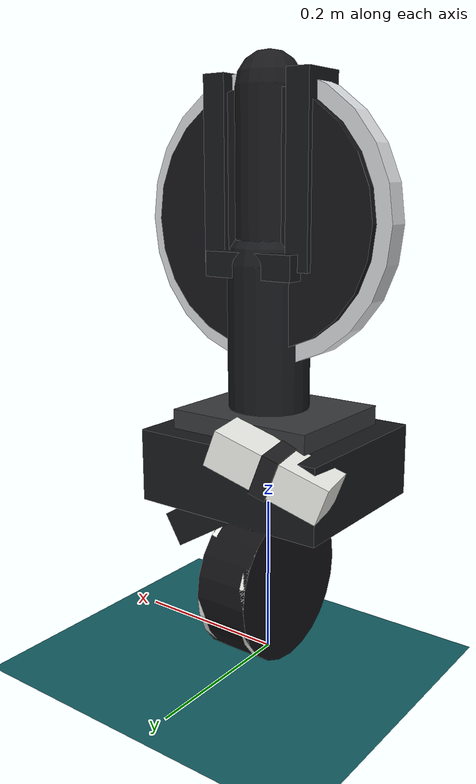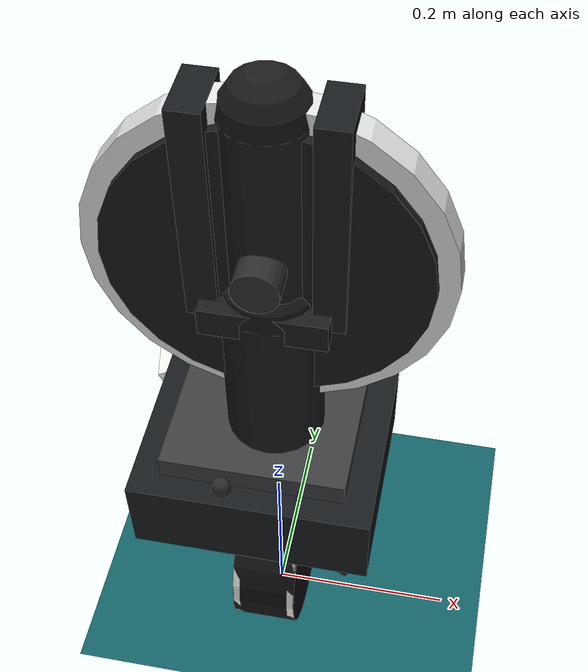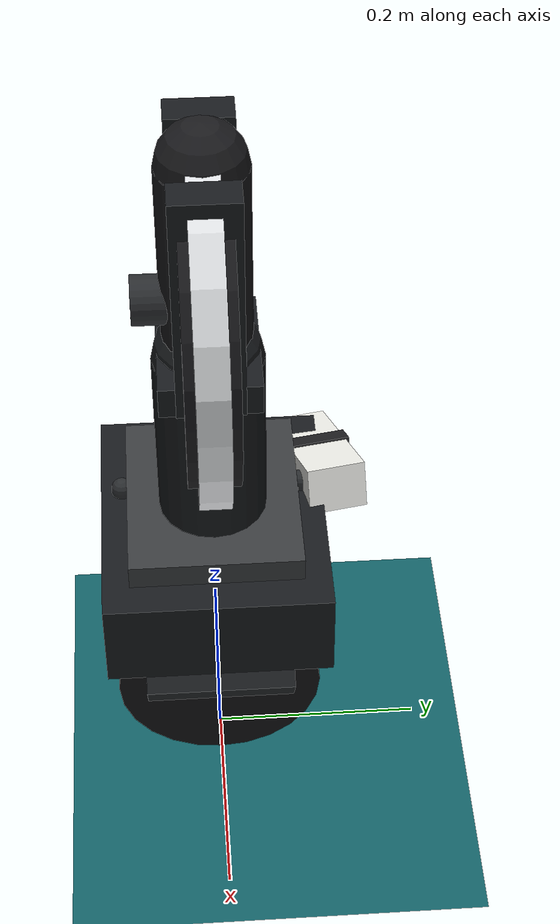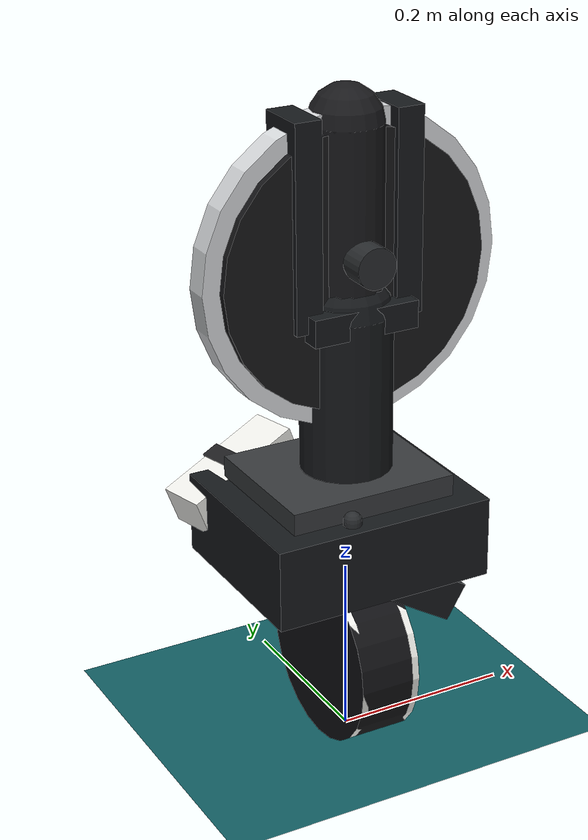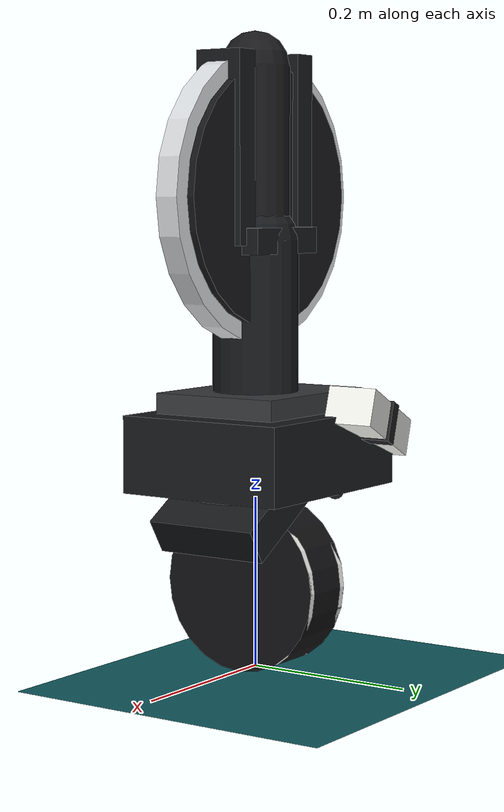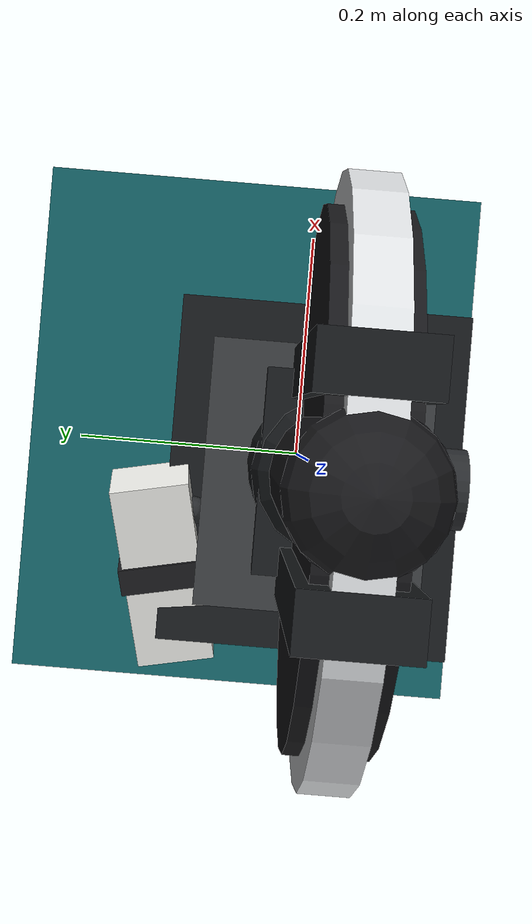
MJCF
<mujoco model="wheel_on_stick">
    <!-- Big picture: world-rooted base (via weld) + ball-drive gimbal + reaction wheel, on uneven terrain. -->
    <compiler angle="radian"/>
    <!-- Global physics settings: 1 kHz simulation and Earth gravity. -->
    <option timestep="0.001" gravity="0 0 -9.81"/>

    <asset>
        <!-- Skybox for environment lighting/background only. -->
        <texture name="sky" type="skybox" builtin="gradient" rgb1="0.78 0.80 0.82" rgb2="0.95 0.96 0.95" width="512" height="3072"/>
        <!-- Checker texture shared by terrain tiles. -->
        <texture name="ground_tex" type="2d" builtin="checker" rgb1="0.08 0.40 0.42" rgb2="0.06 0.34 0.36" width="512" height="512"/>
        <!-- Terrain material (visual + reflectance). -->
        <material name="ground_mat" texture="ground_tex" texrepeat="20 20" reflectance="0.12" specular="0.08" shininess="0.15"/>
        <!-- Blue base-wheel material. -->
        <material name="base_mat" rgba="0.07 0.07 0.08 1.0" specular="0.08" shininess="0.12"/>
        <!-- Main physical stick material. -->
        <material name="stick_mat" rgba="0.10 0.10 0.11 1.0" specular="0.18" shininess="0.25"/>
        <!-- Reaction wheel material. -->
        <material name="wheel_mat" rgba="0.86 0.87 0.88 1.0" specular="0.85" shininess="0.95"/>
        <!-- Hub/highlight material. -->
        <material name="hub_mat" rgba="0.09 0.09 0.10 1.0" specular="0.30" shininess="0.42"/>
        <!-- Dark chassis trim material. -->
        <material name="chassis_dark_mat" rgba="0.09 0.10 0.11 1.0" specular="0.35" shininess="0.55"/>
        <!-- Light chassis trim material. -->
        <material name="chassis_light_mat" rgba="0.22 0.23 0.24 1.0" specular="0.40" shininess="0.60"/>
        <!-- Accent/bumper trim material. -->
        <material name="trim_mat" rgba="0.16 0.17 0.18 1.0" specular="0.22" shininess="0.30"/>
        <!-- Payload block material. -->
        <material name="payload_mat" rgba="0.96 0.78 0.30 1.0" specular="0.40" shininess="0.45"/>
        <!-- Visual tire/rubber material. -->
        <material name="rubber_mat" rgba="0.08 0.08 0.09 1.0" specular="0.05" shininess="0.10"/>
        <!-- Glass-like visual material for decorative sensors/eyes. -->
        <material name="sensor_glass_mat" rgba="0.18 0.19 0.20 0.85" specular="0.25" shininess="0.35"/>
        <!-- Battery pack shell (white). -->
        <material name="battery_white_mat" rgba="0.95 0.95 0.93 1.0" specular="0.20" shininess="0.18"/>
        <!-- Carbon-fiber-like strap/detail. -->
        <material name="carbon_mat" rgba="0.12 0.12 0.13 1.0" specular="0.35" shininess="0.70"/>
        <!-- Wire jacket material. -->
        <material name="wire_red_mat" rgba="0.78 0.12 0.10 1.0" specular="0.20" shininess="0.28"/>
        <!-- XT-style connector yellow. -->
        <material name="connector_yellow_mat" rgba="0.86 0.66 0.14 1.0" specular="0.22" shininess="0.22"/>
    </asset>

    <visual>
        <!-- Camera clipping range. -->
        <map znear="0.001" zfar="50"/>
        <!-- Scene headlight. -->
        <headlight ambient="0.24 0.24 0.26" diffuse="0.62 0.62 0.62" specular="0.25 0.25 0.25"/>
        <!-- Atmospheric haze tint. -->
        <rgba haze="0.90 0.94 1.0 1"/>
    </visual>

    <worldbody>
        <!-- Key directional light for shape definition/shadows. -->
        <light name="sun_key"
               pos="4 -5 7"
               dir="-0.5 0.6 -1"
               directional="true"
               castshadow="true"
               diffuse="0.95 0.95 0.92"
               specular="0.20 0.20 0.20"/>
        <!-- Fill light to soften contrast. -->
        <light name="fill"
               pos="-4 3 3"
               directional="false"
               castshadow="false"
               diffuse="0.35 0.37 0.42"
               specular="0 0 0"/>

        <!-- Flat ground plane -->
        <geom name="ground"
              type="plane"
              size="100.0 100.0 0.1"
              pos="0 0 0"
              material="ground_mat"
              friction="6.0 0.01 0.0001"
              solref="0.003 1"
              solimp="0.995 0.999 0.0001 0.5 2"/>

        <!-- Safety catcher below terrain -->
        <!-- Invisible fail-safe floor to catch numerical blowups/falls. -->
        <geom name="deep_floor" type="plane" size="100 100 0.001" pos="0 0 -1.2" rgba="0 0 0 0" friction="6.0 0.01 0.0001"/>

        <!-- Camera -->
        <!-- Default side camera for observing balancing behavior. -->
        <camera name="side"
                pos="0 -3.8 1.55"
                quat="0.9336 0.3584 0 0"/>

        <!-- Base free body (fully unconstrained in world, no artificial translational rails). -->
        <body name="base_x" pos="0 0 0.10">
                <freejoint name="base_free"/>
                <!-- Small inertial regularizer for numerical robustness. -->
                <inertial pos="0 0 0" mass="0.02" diaginertia="0.00001 0.00001 0.00001"/>

            <!-- Base cart Y -->
            <body name="base_y" pos="0 0 0.0">

                <!-- Cart body -->
                <!-- Main physical base-wheel/body geom for contact and inertia. -->
                <geom name="drive_wheel_phys"
                      type="cylinder"
                      size="0.10 0.035"
                      mass="0.5"
                      quat="0.7071 0 0.7071 0"
                      material="base_mat"
                      friction="6.0 0.01 0.0001"
                      solref="0.003 1"
                      solimp="0.995 0.999 0.0001 0.5 2"/>
                <!-- Visual chassis shell (no mass/collision contribution). -->
                <geom name="chassis_shell"
                      type="box"
                      size="0.125 0.105 0.045"
                      pos="-0.01 0 0.155"
                      mass="0"
                      contype="0"
                      conaffinity="0"
                      material="chassis_dark_mat"/>
                <!-- Visual top panel (no mass/collision contribution). -->
                <geom name="chassis_top_plate"
                      type="box"
                      size="0.095 0.080 0.012"
                      pos="-0.01 0 0.213"
                      mass="0"
                      contype="0"
                      conaffinity="0"
                      material="chassis_light_mat"/>
                <!-- Lower fork cover block. -->
                <geom name="fork_cover"
                      type="box"
                      size="0.070 0.070 0.022"
                      pos="0.040 0.000 0.098"
                      euler="0.0 0.55 0.0"
                      mass="0"
                      contype="0"
                      conaffinity="0"
                      material="chassis_dark_mat"/>
                <!-- Side standoff detail. -->
                <geom name="left_standoff"
                      type="capsule"
                      fromto="-0.040 0.085 0.110  -0.040 0.085 0.205"
                      size="0.010"
                      mass="0"
                      contype="0"
                      conaffinity="0"
                      material="trim_mat"/>
                <!-- Side standoff detail. -->
                <geom name="right_standoff"
                      type="capsule"
                      fromto="-0.040 -0.085 0.110  -0.040 -0.085 0.205"
                      size="0.010"
                      mass="0"
                      contype="0"
                      conaffinity="0"
                      material="trim_mat"/>
                <!-- Battery pack shell (left side). -->
                <geom name="battery_pack"
                      type="box"
                      size="0.070 0.028 0.022"
                      pos="-0.082 0.104 0.188"
                      euler="0.05 -0.36 0.22"
                      mass="0"
                      contype="0"
                      conaffinity="0"
                      material="battery_white_mat"/>
                <!-- Battery strap. -->
                <geom name="battery_strap"
                      type="box"
                      size="0.010 0.031 0.024"
                      pos="-0.082 0.104 0.188"
                      euler="0.05 -0.36 0.22"
                      mass="0"
                      contype="0"
                      conaffinity="0"
                      material="carbon_mat"/>
                <!-- Battery cable exiting pack. -->
                <geom name="wire_red_a"
                      type="capsule"
                      fromto="-0.025 0.092 0.176  0.035 0.050 0.115"
                      size="0.0042"
                      mass="0"
                      contype="0"
                      conaffinity="0"
                      material="wire_red_mat"/>
                <!-- Cable loop around lower frame. -->
                <geom name="wire_red_b"
                      type="capsule"
                      fromto="0.035 0.050 0.115  0.020 -0.060 0.090"
                      size="0.0042"
                      mass="0"
                      contype="0"
                      conaffinity="0"
                      material="wire_red_mat"/>
                <!-- Connector block (yellow). -->
                <geom name="connector_yellow"
                      type="box"
                      size="0.010 0.008 0.007"
                      pos="0.005 0.040 0.107"
                      euler="0.15 0.05 -0.25"
                      mass="0"
                      contype="0"
                      conaffinity="0"
                      material="connector_yellow_mat"/>
                <!-- Connector tail (white). -->
                <geom name="connector_white"
                      type="box"
                      size="0.009 0.007 0.006"
                      pos="0.019 0.038 0.103"
                      euler="0.15 0.05 -0.25"
                      mass="0"
                      contype="0"
                      conaffinity="0"
                      material="battery_white_mat"/>
                <!-- Small front electronics block. -->
                <geom name="base_sensor_dome"
                      type="box"
                      size="0.030 0.020 0.010"
                      pos="0.052 0 0.112"
                      mass="0"
                      contype="0"
                      conaffinity="0"
                      material="chassis_light_mat"/>
                <!-- Visual white sidewall bands on drive wheel. -->
                <geom name="drive_sidewall_l"
                      type="cylinder"
                      size="0.100 0.004"
                      pos="0.031 0 0"
                      quat="0.7071 0 0.7071 0"
                      mass="0"
                      contype="0"
                      conaffinity="0"
                      material="battery_white_mat"/>
                <geom name="drive_sidewall_r"
                      type="cylinder"
                      size="0.100 0.004"
                      pos="-0.031 0 0"
                      quat="0.7071 0 0.7071 0"
                      mass="0"
                      contype="0"
                      conaffinity="0"
                      material="battery_white_mat"/>

                <!-- Single-wheel fork: steer yaw + wheel roll DOFs. -->
                <body name="ball_x_frame" pos="0 0 -0.26">
                    <inertial pos="0 0 0" mass="0.01" diaginertia="0.00001 0.00001 0.00001"/>
                    <joint name="base_x_slide"
                           type="hinge"
                           axis="0 0 1"
                           damping="2.0"
                           armature="0.06"
                           limited="true"
                           range="-0.0001 0.0001"/>

                    <body name="ball_y_frame" pos="0 0 0">
                        <inertial pos="0 0 0" mass="0.01" diaginertia="0.00001 0.00001 0.00001"/>
                        <joint name="base_y_slide"
                               type="hinge"
                               axis="1 0 0"
                               damping="0.7"
                               armature="0.06"
                               limited="false"/>

                    </body>
                </body>

                <!-- 2-DOF stick: pitch then roll -->
                <body name="stick_pitch_frame" pos="0 0 0.10">
                    <!-- Light frame inertia to keep pitch frame numerically well-behaved. -->
                    <inertial pos="0 0 0" mass="0.01" diaginertia="1e-5 1e-5 1e-5"/>

                    <!-- First stick rotational DOF: pitch. -->
                    <joint name="stick_pitch"
                           type="hinge"
                           axis="0 1 0"
                           range="-3.14 3.14"
                           damping="10.0"
                           armature="0.04"/>

                    <body name="stick" pos="0 0 0">

                        <!-- Second stick rotational DOF: roll. -->
                        <joint name="stick_roll"
                               type="hinge"
                               axis="1 0 0"
                               range="-3.14 3.14"
                               damping="12.0"
                               armature="0.04"/>

                        <!-- Main physical pendulum stick (mass-carrying). -->
                        <geom type="capsule"
                              fromto="0 0 0  0 0 0.50"
                              size="0.04"
                              mass="1.0"
                              material="stick_mat"/>
                        <!-- Visual torso fairing around the stick. -->
                        <geom name="torso_shell"
                              type="capsule"
                              fromto="0 0 0.03  0 0 0.30"
                              size="0.050"
                              mass="0"
                              contype="0"
                              conaffinity="0"
                              material="chassis_dark_mat"/>
                        <!-- Upper motor mount base plate. -->
                        <geom name="shoulder_ring"
                              type="box"
                              size="0.060 0.045 0.015"
                              pos="0 0 0.300"
                              mass="0"
                              contype="0"
                              conaffinity="0"
                              material="chassis_dark_mat"/>
                        <!-- Left vertical wheel support. -->
                        <geom name="head_shell"
                              type="box"
                              size="0.015 0.030 0.110"
                              pos="-0.058 0 0.405"
                              mass="0"
                              contype="0"
                              conaffinity="0"
                              material="chassis_dark_mat"/>
                        <!-- Right vertical wheel support. -->
                        <geom name="eye_left"
                              type="box"
                              size="0.015 0.030 0.110"
                              pos="0.058 0 0.405"
                              mass="0"
                              contype="0"
                              conaffinity="0"
                              material="chassis_dark_mat"/>
                        <!-- Rear brace behind reaction wheel. -->
                        <geom name="eye_right"
                              type="capsule"
                              fromto="-0.055 0.000 0.320  0.055 0.000 0.320"
                              size="0.010"
                              mass="0"
                              contype="0"
                              conaffinity="0"
                              material="trim_mat"/>
                        <!-- Motor cap at top rear. -->
                        <geom name="head_band"
                              type="cylinder"
                              size="0.022 0.016"
                              pos="0 -0.048 0.365"
                              quat="0.7071 0.7071 0 0"
                              mass="0"
                              contype="0"
                              conaffinity="0"
                              material="trim_mat"/>

                        <!-- Physical payload mount: user-controlled top payload mass. -->
                        <body name="payload" pos="0 0 0.57">
                            <inertial pos="0 0 0" mass="0.000001" diaginertia="0.00000001 0.00000001 0.00000001"/>
                            <geom name="payload_geom"
                                  type="box"
                                  size="0.06 0.06 0.035"
                                  mass="0"
                                  contype="0"
                                  conaffinity="0"
                                  rgba="0 0 0 0"
                                  material="payload_mat"
                                  friction="1.2 0.02 0.001"/>
                        </body>

                        <!-- Reaction wheel -->
                        <body name="wheel" pos="0 0 0.35">

                            <!-- Wheel spin DOF: fast rotor for attitude control torque. -->
                            <joint name="wheel_spin"
                                   type="hinge"
                                   axis="0 1 0"
                                   damping="0.5"
                                   limited="false"/>

                            <!-- Physical reaction wheel rotor mass. -->
                            <geom type="cylinder"
                                  size="0.15 0.023"
                                  mass="0.8"
                                  quat="0.7071 0.7071 0 0"
                                  material="hub_mat"/>
                            <!-- Silver outer ring. -->
                            <geom name="wheel_tire"
                                  type="cylinder"
                                  size="0.169 0.014"
                                  quat="0.7071 0.7071 0 0"
                                  mass="0"
                                  contype="0"
                                  conaffinity="0"
                                  material="wheel_mat"/>
                            <!-- Dark inner web ring. -->
                            <geom name="wheel_rim"
                                  type="cylinder"
                                  size="0.122 0.012"
                                  quat="0.7071 0.7071 0 0"
                                  mass="0"
                                  contype="0"
                                  conaffinity="0"
                                  material="chassis_dark_mat"/>
                            <!-- 3-spoke pattern (silver). -->
                            <geom name="wheel_spoke_x"
                                  type="capsule"
                                  fromto="0 0 0  0.109 0 0"
                                  size="0.008"
                                  mass="0"
                                  contype="0"
                                  conaffinity="0"
                                  material="wheel_mat"/>
                            <!-- 3-spoke pattern (silver). -->
                            <geom name="wheel_spoke_y"
                                  type="capsule"
                                  fromto="0 0 0  -0.055 0 0.095"
                                  size="0.008"
                                  mass="0"
                                  contype="0"
                                  conaffinity="0"
                                  material="wheel_mat"/>
                            <!-- 3-spoke pattern (silver). -->
                            <geom name="wheel_spoke_z"
                                  type="capsule"
                                  fromto="0 0 0  -0.055 0 -0.095"
                                  size="0.008"
                                  mass="0"
                                  contype="0"
                                  conaffinity="0"
                                  material="wheel_mat"/>

                            <!-- Physical wheel hub mass near axis. -->
                            <geom type="cylinder"
                                  size="0.038 0.009"
                                  quat="0.7071 0.7071 0 0"
                                  material="hub_mat"/>
                            <!-- Visual hub cap detail. -->
                            <geom name="hub_cap"
                                  type="cylinder"
                                  size="0.027 0.006"
                                  quat="0.7071 0.7071 0 0"
                                  mass="0"
                                  contype="0"
                                  conaffinity="0"
                                  material="wheel_mat"/>
                        </body>
                    </body>
                </body>
            </body>
        </body>
    </worldbody>

    <contact>
        <!-- Prevent self-collision between base wheel and stick link at nominal assembly pose. -->
        <exclude body1="base_y" body2="stick"/>
    </contact>

    <equality>
        <!-- Keep base rooted to world so pitch/roll gravity couples into joint dynamics. -->
        <weld name="lock_base_to_world" body1="base_x"/>
    </equality>

    <actuator>
        <!-- Motor command for wheel spin torque. -->
        <motor name="wheel_spin"
               joint="wheel_spin"
               ctrlrange="-2000 2000"/>

        <!-- Motor command for base X force. -->
        <motor name="base_x_force"
               joint="base_x_slide"
               ctrlrange="-100 100"/>

        <!-- Motor command for base Y force. -->
        <motor name="base_y_force"
               joint="base_y_slide"
               ctrlrange="-100 100"/>

    </actuator>

    <sensor>
        <!-- Estimator channels: named sensors consumed by runtime_model.lookup_sensor_ids. -->
        <jointpos name="imu_pitch_angle" joint="stick_pitch"/>
        <jointpos name="imu_roll_angle" joint="stick_roll"/>
        <jointvel name="imu_pitch_rate" joint="stick_pitch"/>
        <jointvel name="imu_roll_rate" joint="stick_roll"/>
        <jointvel name="wheel_rate_sensor" joint="wheel_spin"/>
        <jointpos name="base_x_pos_sensor" joint="base_x_slide"/>
        <jointpos name="base_y_pos_sensor" joint="base_y_slide"/>
        <jointvel name="base_x_vel_sensor" joint="base_x_slide"/>
        <jointvel name="base_y_vel_sensor" joint="base_y_slide"/>
    </sensor>
</mujoco>
